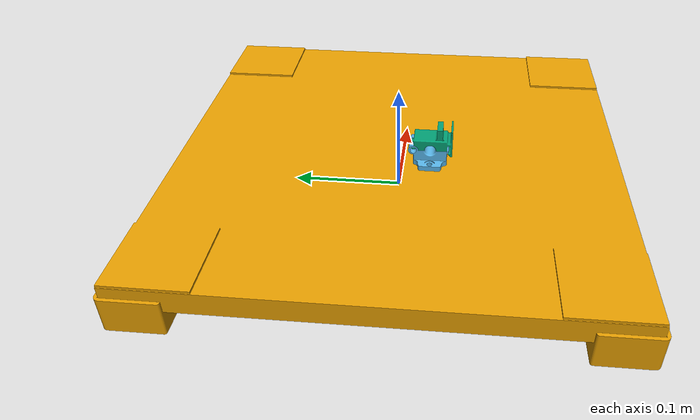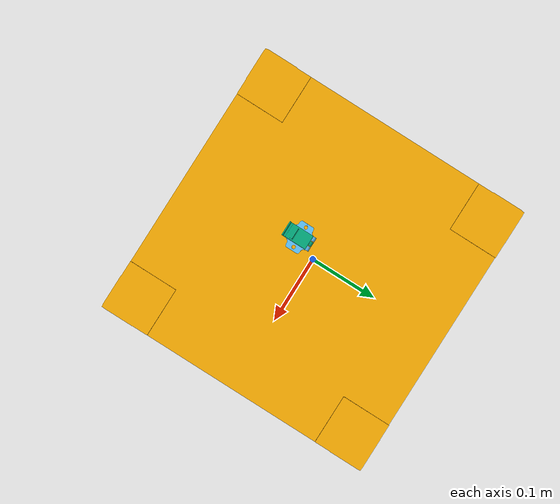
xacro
<?xml version="1.0"  encoding="utf-8"?>
<robot xmlns:xacro="http://www.ros.org/wiki/xacro" name="routing_board">
    <xacro:arg name="gazebo" default="false" />
    <xacro:arg name="xyz" default="0 0 0" />
    <xacro:arg name="rpy" default="0 0 0" />

    <xacro:include filename="$(find nist_description)/boards/components/board.xacro"/>
    <xacro:include filename="$(find nist_description)/boards/components/ethernet_plug.xacro"/>
    <xacro:include filename="$(find nist_description)/boards/components/vertical_tube.xacro"/>
    <xacro:include filename="$(find nist_description)/boards/components/horizontal_tube.xacro"/>
    <xacro:include filename="$(find nist_description)/boards/components/clip_complex.xacro"/>

    <xacro:board/>

    # Elements on the board

    # clip_pos1
    # clip_pos2
    # clip_pos3
    # clip
    <xacro:clip_complex row="5" col="6" align="w" connected_to="board_link" id="1"/>
    # Rj45
    # horizontal_tube
    # vertical_tube

    <xacro:if value="$(arg gazebo)">
        <link name="world" />
        <joint name="world_joint" type="fixed">
            <origin xyz="$(arg xyz)" rpy="$(arg rpy)" />
            <parent link="world" />
            <child  link="board_link" />
        </joint>
    </xacro:if>
</robot>

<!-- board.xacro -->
<robot xmlns:xacro="http://www.ros.org/wiki/xacro" name="board">
  <xacro:include filename="$(find nist_description)/boards/utils.xacro" />

  <!-- safety_distance: Minimum safety distance in [m] by which the collision volumes are expanded and which is enforced during robot motions -->
  <xacro:macro name="board">
    <!-- Define the hand_tcp frame -->
    <link name="board_link">
      <visual>
        <geometry>
          <mesh filename="package://nist_description/models/board.stl" />
        </geometry>
      </visual>
      <collision>
        <origin xyz="0 0 0.021" rpy="0 0 0" />
        <geometry>
          <box size="0.41 0.41 0.041"/>
        </geometry>
      </collision>
      <xacro:compute_intertia mass="1.5" w="0.4" h="0.04" d="0.4" xyz="0 0 0.02"/>
    </link>

  </xacro:macro>
</robot>

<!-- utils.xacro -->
<robot xmlns:xacro="http://www.ros.org/wiki/xacro">

    <xacro:macro name="compute_position" params="row col aligment">
        <xacro:if value="${aligment == 's'}">
            <origin xyz="${0.02 + col * 0.03 - 0.2} ${0.02 + row * 0.03 - 0.2} 0.041" rpy="0 0 0" />
        </xacro:if>
        <xacro:if value="${aligment == 'e'}">
            <origin xyz="${0.02 + col * 0.03 - 0.2} ${0.02 + row * 0.03 - 0.2} 0.041" rpy="0 0 ${pi/2}" />
        </xacro:if>
        <xacro:if value="${aligment == 'n'}">
            <origin xyz="${0.02 + col * 0.03 - 0.2} ${0.02 + row * 0.03 - 0.2} 0.041" rpy="0 0 ${pi}" />
        </xacro:if>
        <xacro:if value="${aligment == 'w'}">
            <origin xyz="${0.02 + col * 0.03 - 0.2} ${0.02 + row * 0.03 - 0.2} 0.041" rpy="0 0 ${-pi/2}" />
        </xacro:if>
    </xacro:macro>

    <xacro:macro name="compute_intertia" params="mass w h d xyz:='0 0 0' rpy:='0 0 0'">
        <inertial>
            <origin rpy="${rpy}" xyz="${xyz}" />
            <mass value="${mass}" />
            <inertia ixx="${mass*(w*w+h*h)/12}" ixy="0" ixz="0" iyy="${mass*(d*d+h*h)/12}" iyz="0" izz="${mass*(w*w+d*d)/12}" />
        </inertial>
    </xacro:macro>
</robot>

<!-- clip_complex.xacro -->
<robot xmlns:xacro="http://www.ros.org/wiki/xacro" name="clip_complex">
  <!-- safety_distance: Minimum safety distance in [m] by which the collision volumes are expanded and which is enforced during robot motions -->
  <xacro:macro name="clip_complex" params="connected_to:='' row:='0' col:='0' align='h' tube_rpy:='0 ${pi} 0' tube_xyz:='0.0 -0.01 0.085' id:='0'">

  <xacro:include filename="$(find nist_description)/boards/utils.xacro" />

    <xacro:unless value="${connected_to == ''}">
      <joint name="CC_${id}_2_board" type="fixed">
        <parent link="${connected_to}" />
        <child link="clip_complex_base_${id}" />
        <xacro:compute_position row="${row}" col="${col}" aligment="${align}"/>
      </joint>
    </xacro:unless>

    <!-- Define the hand_tcp frame -->
    <link name="clip_complex_base_${id}">
      <visual>
        <geometry>
          <mesh filename="package://nist_description/models/clip_ethernet_orizzontale_base_scaled.stl" />
        </geometry>
      </visual>
      <collision>
        <origin xyz="0 0 0" rpy="0 0 0" />
        <geometry>
          <mesh filename="package://nist_description/models/clip_ethernet_orizzontale_base_scaled.stl" />
        </geometry>
      </collision>
      <xacro:compute_intertia mass="0.01" w="0.02" h="0.015" d="0.03" xyz="0 -0.015 0.0075"/>
    </link>

    <link name="clip_complex_${id}">
      <visual>
        <geometry>
          <mesh filename="package://nist_description/models/clip_ethernet_orizzontale_top_scaled.stl" />
        </geometry>
      </visual>
      <collision>
        <origin xyz="0 0 0" rpy="0 0 0" />
        <geometry>
          <mesh filename="package://nist_description/models/clip_ethernet_orizzontale_top_scaled.stl" />
        </geometry>
      </collision>
      <xacro:compute_intertia mass="0.01" w="0.02" h="0.01" d="0.03" xyz="0.015 0 0.005"/>
    </link>

    <joint name="BTT_clip_complex_base_${id}" type="revolute">
      <parent link="clip_complex_base_${id}" />
      <child link="clip_complex_${id}" />
      <origin xyz="-0.015 -0.015 0.015" rpy="0 0 0" />
      <limit effort="1000" velocity="6.28" lower="${-pi}" upper="0" />
      <axis xyz="0 1 0" />
    </joint>

  </xacro:macro>
</robot>
